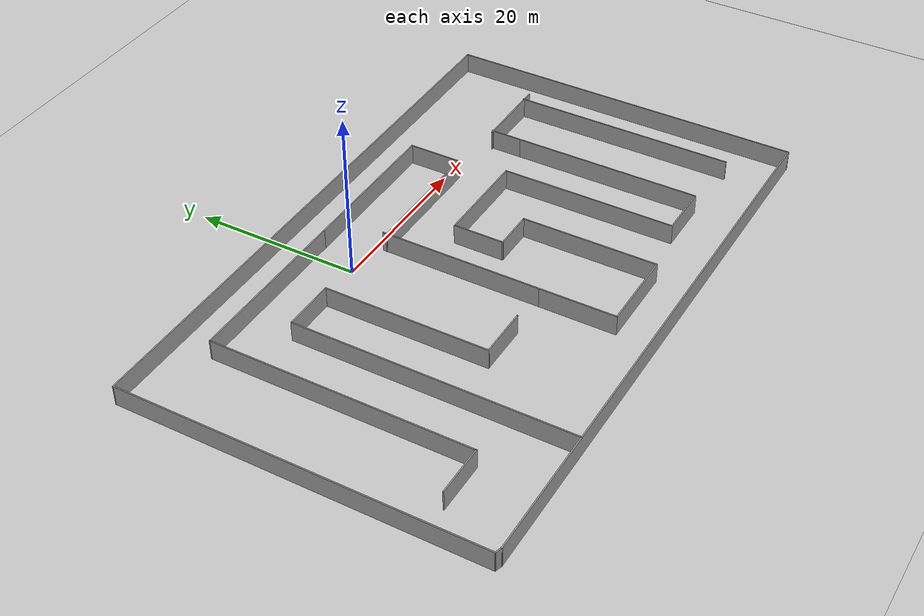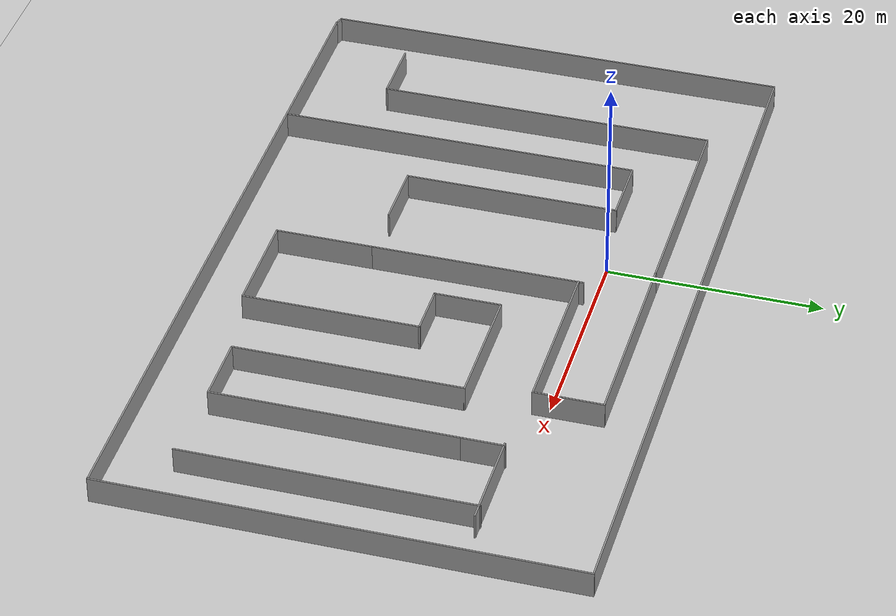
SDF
<sdf version="1.7">
 <world name="default">
  <plugin filename="gz-sim-physics-system" name="gz::sim::systems::Physics"/>
  <plugin filename="gz-sim-scene-broadcaster-system" name="gz::sim::systems::SceneBroadcaster"/>
  <plugin filename="gz-sim-user-commands-system" name="gz::sim::systems::UserCommands"/>
  <plugin filename="gz-sim-sensors-system" name="gz::sim::systems::Sensors">
   <render_engine>ogre</render_engine>
  </plugin>
  <plugin filename="gz-sim-imu-system" name="gz::sim::systems::Imu"/>
  <plugin filename="gz-sim-navsat-system" name="gz::sim::systems::NavSat"/>
  <light name="sun" type="directional">
   <pose>0 0 10 0 -0 0</pose>
   <diffuse>0.8 0.8 0.8 1</diffuse>
   <specular>0.2 0.2 0.2 1</specular>
   <attenuation>
    <range>1000</range>
    <constant>0.9</constant>
    <linear>0.01</linear>
    <quadratic>0.001</quadratic>
   </attenuation>
   <direction>-0.5 0.1 -0.9</direction>
   <spot><inner_angle>0</inner_angle><outer_angle>0</outer_angle><falloff>0</falloff></spot>
  </light>
  <model name="ground_plane">
   <static>1</static>
   <link name="link">
    <collision name="collision">
     <geometry><plane><normal>0 0 1</normal><size>100 100</size></plane></geometry>
     <surface>
      <contact><collide_bitmask>65535</collide_bitmask></contact>
      <friction><ode><mu>100</mu><mu2>50</mu2></ode></friction>
     </surface>
    </collision>
    <visual name="visual">
     <cast_shadows>0</cast_shadows>
     <geometry><plane><normal>0 0 1</normal><size>100 100</size></plane></geometry>
     <material>
      <script><uri>file://media/materials/scripts/gazebo.material</uri><name>Gazebo/Grey</name></script>
     </material>
    </visual>
   </link>
  </model>
  <gravity>0 0 -9.8</gravity>
  <magnetic_field>6e-06 2.3e-05 -4.2e-05</magnetic_field>
  <atmosphere type="adiabatic"/>
  <physics type="ode">
   <max_step_size>0.001</max_step_size>
   <real_time_factor>1</real_time_factor>
   <real_time_update_rate>1000</real_time_update_rate>
  </physics>
  <scene><ambient>0.4 0.4 0.4 1</ambient><background>0.7 0.7 0.7 1</background><shadows>1</shadows></scene>
  <audio><device>default</device></audio>
  <spherical_coordinates>
   <surface_model>EARTH_WGS84</surface_model>
   <latitude_deg>0</latitude_deg>
   <longitude_deg>0</longitude_deg>
   <elevation>0</elevation>
   <heading_deg>0</heading_deg>
  </spherical_coordinates>
  <model name="nav">
   <pose>6.31713 -12.5583 0 0 -0 0</pose>
   <link name="Wall_20">
    <collision name="Wall_20_Collision">
     <geometry><box><size>69.7966 0.15 2.5</size></box></geometry>
     <pose>0 0 1.25 0 -0 0</pose>
    </collision>
    <visual name="Wall_20_Visual">
     <pose>0 0 1.25 0 -0 0</pose>
     <geometry><box><size>69.7966 0.15 2.5</size></box></geometry>
     <material>
      <script><uri>file://media/materials/scripts/gazebo.material</uri><name>Gazebo/Grey</name></script>
      <ambient>1 1 1 1</ambient>
     </material>
     <meta><layer>0</layer></meta>
    </visual>
    <pose>0.303101 -21.7901 0 0 -0 0</pose>
   </link>
   <link name="Wall_21">
    <collision name="Wall_21_Collision">
     <geometry><box><size>43.75 0.15 2.5</size></box></geometry>
     <pose>0 0 1.25 0 -0 0</pose>
    </collision>
    <visual name="Wall_21_Visual">
     <pose>0 0 1.25 0 -0 0</pose>
     <geometry><box><size>43.75 0.15 2.5</size></box></geometry>
     <material>
      <script><uri>file://media/materials/scripts/gazebo.material</uri><name>Gazebo/Grey</name></script>
      <ambient>1 1 1 1</ambient>
     </material>
     <meta><layer>0</layer></meta>
    </visual>
    <pose>35.2901 0.009933 0 0 -0 1.5708</pose>
   </link>
   <link name="Wall_23">
    <collision name="Wall_23_Collision">
     <geometry><box><size>70.5466 0.15 2.5</size></box></geometry>
     <pose>0 0 1.25 0 -0 0</pose>
    </collision>
    <visual name="Wall_23_Visual">
     <pose>0 0 1.25 0 -0 0</pose>
     <geometry><box><size>70.5466 0.15 2.5</size></box></geometry>
     <material>
      <script><uri>file://media/materials/scripts/gazebo.material</uri><name>Gazebo/Grey</name></script>
      <ambient>1 1 1 1</ambient>
     </material>
     <meta><layer>0</layer></meta>
    </visual>
    <pose>-0.071899 21.8099 0 0 -0 -3.14159</pose>
   </link>
   <link name="Wall_24">
    <collision name="Wall_24_Collision">
     <geometry><box><size>43.5 0.15 2.5</size></box></geometry>
     <pose>0 0 1.25 0 -0 0</pose>
    </collision>
    <visual name="Wall_24_Visual">
     <pose>0 0 1.25 0 -0 0</pose>
     <geometry><box><size>43.5 0.15 2.5</size></box></geometry>
     <material>
      <script><uri>file://media/materials/scripts/gazebo.material</uri><name>Gazebo/Grey</name></script>
      <ambient>1 1 1 1</ambient>
     </material>
     <meta><layer>0</layer></meta>
    </visual>
    <pose>-35.2702 0.134933 0 0 -0 -1.5708</pose>
   </link>
   <link name="Wall_28">
    <collision name="Wall_28_Collision">
     <geometry><box><size>0.940569 0.15 2.5</size></box></geometry>
     <pose>0 0 1.25 0 -0 0</pose>
    </collision>
    <visual name="Wall_28_Visual">
     <pose>0 0 1.25 0 -0 0</pose>
     <geometry><box><size>0.940569 0.15 2.5</size></box></geometry>
     <material>
      <script><uri>file://media/materials/scripts/gazebo.material</uri><name>Gazebo/Grey</name></script>
      <ambient>1 1 1 1</ambient>
     </material>
     <meta><layer>0</layer></meta>
    </visual>
    <pose>-34.8952 -21.6651 0 0 -0 2.81984</pose>
   </link>
   <link name="Wall_32">
    <collision name="Wall_32_Collision">
     <geometry><box><size>33.75 0.15 2.5</size></box></geometry>
     <pose>0 0 1.25 0 -0 0</pose>
    </collision>
    <visual name="Wall_32_Visual">
     <pose>0 0 1.25 0 -0 0</pose>
     <geometry><box><size>33.75 0.15 2.5</size></box></geometry>
     <material>
      <script><uri>file://media/materials/scripts/gazebo.material</uri><name>Gazebo/Grey</name></script>
      <ambient>1 1 1 1</ambient>
     </material>
     <meta><layer>0</layer></meta>
    </visual>
    <pose>-18.6749 -4.91855 0 0 -0 1.5708</pose>
   </link>
   <link name="Wall_33">
    <collision name="Wall_33_Collision">
     <geometry><box><size>6.5 0.15 2.5</size></box></geometry>
     <pose>0 0 1.25 0 -0 0</pose>
    </collision>
    <visual name="Wall_33_Visual">
     <pose>0 0 1.25 0 -0 0</pose>
     <geometry><box><size>6.5 0.15 2.5</size></box></geometry>
     <material>
      <script><uri>file://media/materials/scripts/gazebo.material</uri><name>Gazebo/Grey</name></script>
      <ambient>1 1 1 1</ambient>
     </material>
     <meta><layer>0</layer></meta>
    </visual>
    <pose>-15.4999 11.8814 0 0 -0 0</pose>
   </link>
   <link name="Wall_34">
    <collision name="Wall_34_Collision">
     <geometry><box><size>20 0.15 2.5</size></box></geometry>
     <pose>0 0 1.25 0 -0 0</pose>
    </collision>
    <visual name="Wall_34_Visual">
     <pose>0 0 1.25 0 -0 0</pose>
     <geometry><box><size>20 0.15 2.5</size></box></geometry>
     <material>
      <script><uri>file://media/materials/scripts/gazebo.material</uri><name>Gazebo/Grey</name></script>
      <ambient>1 1 1 1</ambient>
     </material>
     <meta><layer>0</layer></meta>
    </visual>
    <pose>-12.3249 1.95644 0 0 -0 -1.5708</pose>
   </link>
   <link name="Wall_36">
    <collision name="Wall_36_Collision">
     <geometry><box><size>19.75 0.15 2.5</size></box></geometry>
     <pose>0 0 1.25 0 -0 0</pose>
    </collision>
    <visual name="Wall_36_Visual">
     <pose>0 0 1.25 0 -0 0</pose>
     <geometry><box><size>19.75 0.15 2.5</size></box></geometry>
     <material>
      <script><uri>file://media/materials/scripts/gazebo.material</uri><name>Gazebo/Grey</name></script>
      <ambient>1 1 1 1</ambient>
     </material>
     <meta><layer>0</layer></meta>
    </visual>
    <pose>-1.22488 1.83144 0 0 -0 1.5708</pose>
   </link>
   <link name="Wall_38">
    <collision name="Wall_38_Collision">
     <geometry><box><size>9.5 0.15 2.5</size></box></geometry>
     <pose>0 0 1.25 0 -0 0</pose>
    </collision>
    <visual name="Wall_38_Visual">
     <pose>0 0 1.25 0 -0 0</pose>
     <geometry><box><size>9.5 0.15 2.5</size></box></geometry>
     <material>
      <script><uri>file://media/materials/scripts/gazebo.material</uri><name>Gazebo/Grey</name></script>
      <ambient>1 1 1 1</ambient>
     </material>
     <meta><layer>0</layer></meta>
    </visual>
    <pose>26.4026 10.6352 0 0 -0 0</pose>
   </link>
   <link name="Wall_42">
    <collision name="Wall_42_Collision">
     <geometry><box><size>6.25 0.15 2.5</size></box></geometry>
     <pose>0 0 1.25 0 -0 0</pose>
    </collision>
    <visual name="Wall_42_Visual">
     <pose>0 0 1.25 0 -0 0</pose>
     <geometry><box><size>6.25 0.15 2.5</size></box></geometry>
     <material>
      <script><uri>file://media/materials/scripts/gazebo.material</uri><name>Gazebo/Grey</name></script>
      <ambient>1 1 1 1</ambient>
     </material>
     <meta><layer>0</layer></meta>
    </visual>
    <pose>-9.27488 -7.96856 0 0 -0 0</pose>
   </link>
   <link name="Wall_44">
    <collision name="Wall_44_Collision">
     <geometry><box><size>9.25 0.15 2.5</size></box></geometry>
     <pose>0 0 1.25 0 -0 0</pose>
    </collision>
    <visual name="Wall_44_Visual">
     <pose>0 0 1.25 0 -0 0</pose>
     <geometry><box><size>9.25 0.15 2.5</size></box></geometry>
     <material>
      <script><uri>file://media/materials/scripts/gazebo.material</uri><name>Gazebo/Grey</name></script>
      <ambient>1 1 1 1</ambient>
     </material>
     <meta><layer>0</layer></meta>
    </visual>
    <pose>-1.22488 -12.5186 0 0 -0 -1.5708</pose>
   </link>
   <link name="Wall_46">
    <collision name="Wall_46_Collision">
     <geometry><box><size>10 0.15 2.5</size></box></geometry>
     <pose>0 0 1.25 0 -0 0</pose>
    </collision>
    <visual name="Wall_46_Visual">
     <pose>0 0 1.25 0 -0 0</pose>
     <geometry><box><size>10 0.15 2.5</size></box></geometry>
     <material>
      <script><uri>file://media/materials/scripts/gazebo.material</uri><name>Gazebo/Grey</name></script>
      <ambient>1 1 1 1</ambient>
     </material>
     <meta><layer>0</layer></meta>
    </visual>
    <pose>3.70012 -17.0686 0 0 -0 0</pose>
   </link>
   <link name="Wall_47">
    <collision name="Wall_47_Collision">
     <geometry><box><size>16.5 0.15 2.5</size></box></geometry>
     <pose>0 0 1.25 0 -0 0</pose>
    </collision>
    <visual name="Wall_47_Visual">
     <pose>0 0 1.25 0 -0 0</pose>
     <geometry><box><size>16.5 0.15 2.5</size></box></geometry>
     <material>
      <script><uri>file://media/materials/scripts/gazebo.material</uri><name>Gazebo/Grey</name></script>
      <ambient>1 1 1 1</ambient>
     </material>
     <meta><layer>0</layer></meta>
    </visual>
    <pose>8.62512 -8.89355 0 0 -0 1.5708</pose>
   </link>
   <link name="Wall_48">
    <collision name="Wall_48_Collision">
     <geometry><box><size>5 0.15 2.5</size></box></geometry>
     <pose>0 0 1.25 0 -0 0</pose>
    </collision>
    <visual name="Wall_48_Visual">
     <pose>0 0 1.25 0 -0 0</pose>
     <geometry><box><size>5 0.15 2.5</size></box></geometry>
     <material>
      <script><uri>file://media/materials/scripts/gazebo.material</uri><name>Gazebo/Grey</name></script>
      <ambient>1 1 1 1</ambient>
     </material>
     <meta><layer>0</layer></meta>
    </visual>
    <pose>6.20012 -0.718556 0 0 -0 3.14159</pose>
   </link>
   <link name="Wall_49">
    <collision name="Wall_49_Collision">
     <geometry><box><size>6.25 0.15 2.5</size></box></geometry>
     <pose>0 0 1.25 0 -0 0</pose>
    </collision>
    <visual name="Wall_49_Visual">
     <pose>0 0 1.25 0 -0 0</pose>
     <geometry><box><size>6.25 0.15 2.5</size></box></geometry>
     <material>
      <script><uri>file://media/materials/scripts/gazebo.material</uri><name>Gazebo/Grey</name></script>
      <ambient>1 1 1 1</ambient>
     </material>
     <meta><layer>0</layer></meta>
    </visual>
    <pose>3.77512 2.33144 0 0 -0 1.5708</pose>
   </link>
   <link name="Wall_50">
    <collision name="Wall_50_Collision">
     <geometry><box><size>12 0.15 2.5</size></box></geometry>
     <pose>0 0 1.25 0 -0 0</pose>
    </collision>
    <visual name="Wall_50_Visual">
     <pose>0 0 1.25 0 -0 0</pose>
     <geometry><box><size>12 0.15 2.5</size></box></geometry>
     <material>
      <script><uri>file://media/materials/scripts/gazebo.material</uri><name>Gazebo/Grey</name></script>
      <ambient>1 1 1 1</ambient>
     </material>
     <meta><layer>0</layer></meta>
    </visual>
    <pose>9.70012 5.38145 0 0 -0 0</pose>
   </link>
   <link name="Wall_51">
    <collision name="Wall_51_Collision">
     <geometry><box><size>21.25 0.15 2.5</size></box></geometry>
     <pose>0 0 1.25 0 -0 0</pose>
    </collision>
    <visual name="Wall_51_Visual">
     <pose>0 0 1.25 0 -0 0</pose>
     <geometry><box><size>21.25 0.15 2.5</size></box></geometry>
     <material>
      <script><uri>file://media/materials/scripts/gazebo.material</uri><name>Gazebo/Grey</name></script>
      <ambient>1 1 1 1</ambient>
     </material>
     <meta><layer>0</layer></meta>
    </visual>
    <pose>15.6251 -5.16855 0 0 -0 -1.5708</pose>
   </link>
   <link name="Wall_52">
    <collision name="Wall_52_Collision">
     <geometry><box><size>6.5 0.15 2.5</size></box></geometry>
     <pose>0 0 1.25 0 -0 0</pose>
    </collision>
    <visual name="Wall_52_Visual">
     <pose>0 0 1.25 0 -0 0</pose>
     <geometry><box><size>6.5 0.15 2.5</size></box></geometry>
     <material>
      <script><uri>file://media/materials/scripts/gazebo.material</uri><name>Gazebo/Grey</name></script>
      <ambient>1 1 1 1</ambient>
     </material>
     <meta><layer>0</layer></meta>
    </visual>
    <pose>18.8001 -15.7186 0 0 -0 0</pose>
   </link>
   <link name="Wall_53">
    <collision name="Wall_53_Collision">
     <geometry><box><size>22.75 0.15 2.5</size></box></geometry>
     <pose>0 0 1.25 0 -0 0</pose>
    </collision>
    <visual name="Wall_53_Visual">
     <pose>0 0 1.25 0 -0 0</pose>
     <geometry><box><size>22.75 0.15 2.5</size></box></geometry>
     <material>
      <script><uri>file://media/materials/scripts/gazebo.material</uri><name>Gazebo/Grey</name></script>
      <ambient>1 1 1 1</ambient>
     </material>
     <meta><layer>0</layer></meta>
    </visual>
    <pose>21.9751 -4.41855 0 0 -0 1.5708</pose>
   </link>
   <link name="Wall_54">
    <collision name="Wall_54_Collision">
     <geometry><box><size>4 0.15 2.5</size></box></geometry>
     <pose>0 0 1.25 0 -0 0</pose>
    </collision>
    <visual name="Wall_54_Visual">
     <pose>0 0 1.25 0 -0 0</pose>
     <geometry><box><size>4 0.15 2.5</size></box></geometry>
     <material>
      <script><uri>file://media/materials/scripts/gazebo.material</uri><name>Gazebo/Grey</name></script>
      <ambient>1 1 1 1</ambient>
     </material>
     <meta><layer>0</layer></meta>
    </visual>
    <pose>21.9751 8.80645 0 0 -0 1.5708</pose>
   </link>
   <link name="Wall_56">
    <collision name="Wall_56_Collision">
     <geometry><box><size>16 0.15 2.5</size></box></geometry>
     <pose>0 0 1.25 0 -0 0</pose>
    </collision>
    <visual name="Wall_56_Visual">
     <pose>0 0 1.25 0 -0 0</pose>
     <geometry><box><size>16 0.15 2.5</size></box></geometry>
     <material>
      <script><uri>file://media/materials/scripts/gazebo.material</uri><name>Gazebo/Grey</name></script>
      <ambient>1 1 1 1</ambient>
     </material>
     <meta><layer>0</layer></meta>
    </visual>
    <pose>6.64905 11.1778 0 0 -0 0</pose>
   </link>
   <link name="Wall_57">
    <collision name="Wall_57_Collision">
     <geometry><box><size>6.5 0.15 2.5</size></box></geometry>
     <pose>0 0 1.25 0 -0 0</pose>
    </collision>
    <visual name="Wall_57_Visual">
     <pose>0 0 1.25 0 -0 0</pose>
     <geometry><box><size>6.5 0.15 2.5</size></box></geometry>
     <material>
      <script><uri>file://media/materials/scripts/gazebo.material</uri><name>Gazebo/Grey</name></script>
      <ambient>1 1 1 1</ambient>
     </material>
     <meta><layer>0</layer></meta>
    </visual>
    <pose>14.5741 14.3528 0 0 -0 1.5708</pose>
   </link>
   <link name="Wall_58">
    <collision name="Wall_58_Collision">
     <geometry><box><size>19 0.15 2.5</size></box></geometry>
     <pose>0 0 1.25 0 -0 0</pose>
    </collision>
    <visual name="Wall_58_Visual">
     <pose>0 0 1.25 0 -0 0</pose>
     <geometry><box><size>19 0.15 2.5</size></box></geometry>
     <material>
      <script><uri>file://media/materials/scripts/gazebo.material</uri><name>Gazebo/Grey</name></script>
      <ambient>1 1 1 1</ambient>
     </material>
     <meta><layer>0</layer></meta>
    </visual>
    <pose>5.14905 17.5278 0 0 -0 3.14159</pose>
   </link>
   <link name="Wall_59">
    <collision name="Wall_59_Collision">
     <geometry><box><size>21 0.15 2.5</size></box></geometry>
     <pose>0 0 1.25 0 -0 0</pose>
    </collision>
    <visual name="Wall_59_Visual">
     <pose>0 0 1.25 0 -0 0</pose>
     <geometry><box><size>21 0.15 2.5</size></box></geometry>
     <material>
      <script><uri>file://media/materials/scripts/gazebo.material</uri><name>Gazebo/Grey</name></script>
      <ambient>1 1 1 1</ambient>
     </material>
     <meta><layer>0</layer></meta>
    </visual>
    <pose>-14.7009 17.5278 0 0 -0 3.14159</pose>
   </link>
   <link name="Wall_60">
    <collision name="Wall_60_Collision">
     <geometry><box><size>31.5 0.15 2.5</size></box></geometry>
     <pose>0 0 1.25 0 -0 0</pose>
    </collision>
    <visual name="Wall_60_Visual">
     <pose>0 0 1.25 0 -0 0</pose>
     <geometry><box><size>31.5 0.15 2.5</size></box></geometry>
     <material>
      <script><uri>file://media/materials/scripts/gazebo.material</uri><name>Gazebo/Grey</name></script>
      <ambient>1 1 1 1</ambient>
     </material>
     <meta><layer>0</layer></meta>
    </visual>
    <pose>-25.1259 1.85282 0 0 -0 -1.5708</pose>
   </link>
   <link name="Wall_64">
    <collision name="Wall_64_Collision">
     <geometry><box><size>6.25 0.15 2.5</size></box></geometry>
     <pose>0 0 1.25 0 -0 0</pose>
    </collision>
    <visual name="Wall_64_Visual">
     <pose>0 0 1.25 0 -0 0</pose>
     <geometry><box><size>6.25 0.15 2.5</size></box></geometry>
     <material>
      <script><uri>file://media/materials/scripts/gazebo.material</uri><name>Gazebo/Grey</name></script>
      <ambient>1 1 1 1</ambient>
     </material>
     <meta><layer>0</layer></meta>
    </visual>
    <pose>-28.1759 -13.8222 0 0 -0 3.14159</pose>
   </link>
   <link name="Wall_66">
    <collision name="Wall_66_Collision">
     <geometry><box><size>27 0.15 2.5</size></box></geometry>
     <pose>0 0 1.25 0 -0 0</pose>
    </collision>
    <visual name="Wall_66_Visual">
     <pose>0 0 1.25 0 -0 0</pose>
     <geometry><box><size>27 0.15 2.5</size></box></geometry>
     <material>
      <script><uri>file://media/materials/scripts/gazebo.material</uri><name>Gazebo/Grey</name></script>
      <ambient>1 1 1 1</ambient>
     </material>
     <meta><layer>0</layer></meta>
    </visual>
    <pose>29.8166 -2.7106 0 0 -0 -1.5708</pose>
   </link>
   <static>1</static>
  </model>
 </world>
</sdf>
